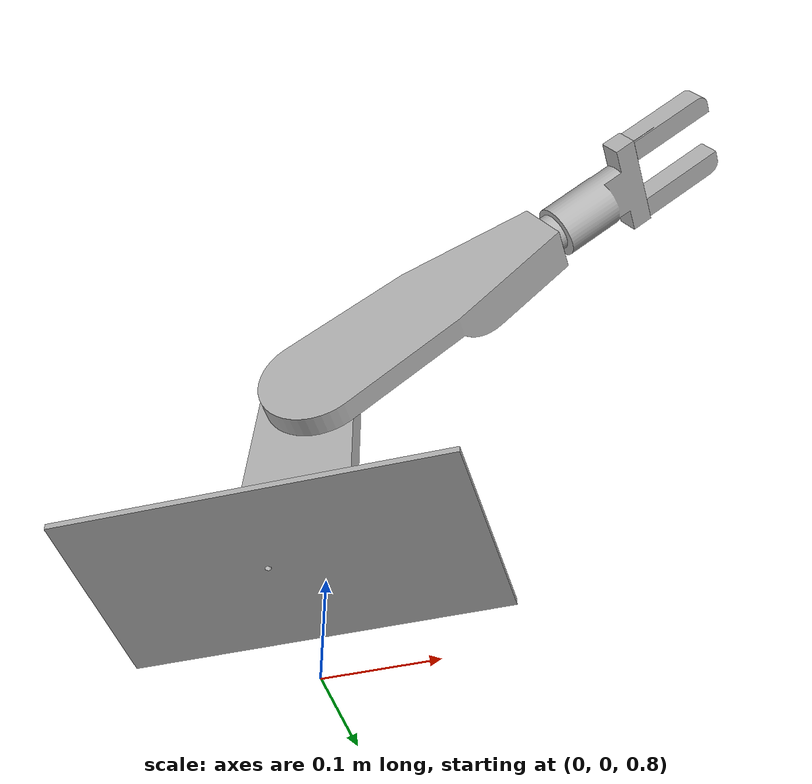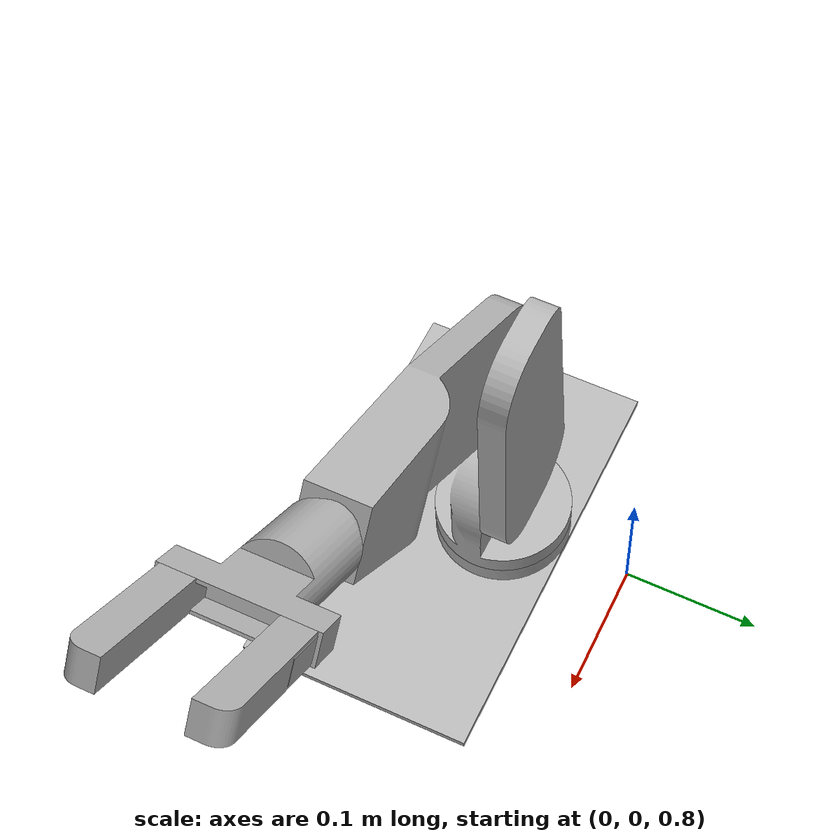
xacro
<?xml version="1.0" ?>
<robot name="rocare_arm" xmlns:xacro="http://www.ros.org/wiki/xacro">

<xacro:include filename="$(find rocare_arm_description)/urdf/materials.xacro" />
<xacro:include filename="$(find rocare_arm_description)/urdf/rocare_arm.trans" />
<xacro:include filename="$(find rocare_arm_description)/urdf/rocare_arm.gazebo" />
<link name="base_arm">
  <inertial>
    <origin rpy="0 0 0" xyz="0.012076123028712391 -0.12586947160678996 0.8067467349089783"/>
    <mass value="0.41662835740019055"/>
    <inertia ixx="0.000951" ixy="5.9e-05" ixz="1.6e-05" iyy="0.002422" iyz="-3.5e-05" izz="0.003345"/>
  </inertial>
  <visual>
    <origin rpy="0 0 0" xyz="0 0 0"/>
    <geometry>
      <mesh filename="package://rocare_arm_description/meshes/base_link.stl" scale="0.001 0.001 0.001"/>
    </geometry>
    <material name="silver"/>
  </visual>
  <collision>
    <origin rpy="0 0 0" xyz="0 0 0"/>
    <geometry>
      <mesh filename="package://rocare_arm_description/meshes/base_link.stl" scale="0.001 0.001 0.001"/>
    </geometry>
  </collision>
</link>

<link name="musc_1">
  <inertial>
    <origin rpy="0 0 0" xyz="0.0024528563193816997 0.029369279373445967 0.06944957584162426"/>
    <mass value="0.4042358344706466"/>
    <inertia ixx="0.001441" ixy="-1e-06" ixz="-3.2e-05" iyy="0.001691" iyz="-2.2e-05" izz="0.000289"/>
  </inertial>
  <visual>
    <origin rpy="0 0 0" xyz="-0.0 0.115 -0.875"/>
    <geometry>
      <mesh filename="package://rocare_arm_description/meshes/musc_1.stl" scale="0.001 0.001 0.001"/>
    </geometry>
    <material name="silver"/>
  </visual>
  <collision>
    <origin rpy="0 0 0" xyz="-0.0 0.115 -0.875"/>
    <geometry>
      <mesh filename="package://rocare_arm_description/meshes/musc_1.stl" scale="0.001 0.001 0.001"/>
    </geometry>
  </collision>
</link>

<link name="elbow_1">
  <inertial>
    <origin rpy="0 0 0" xyz="0.08009117340560826 -0.021060582174940265 0.05552393460555938"/>
    <mass value="0.5803793457847506"/>
    <inertia ixx="0.001567" ixy="-0.000142" ixz="-0.001657" iyy="0.004276" iyz="-9.7e-05" izz="0.002836"/>
  </inertial>
  <visual>
    <origin rpy="0 0 0" xyz="-0.019636 0.08 -1.027721"/>
    <geometry>
      <mesh filename="package://rocare_arm_description/meshes/elbow_1.stl" scale="0.001 0.001 0.001"/>
    </geometry>
    <material name="silver"/>
  </visual>
  <collision>
    <origin rpy="0 0 0" xyz="-0.019636 0.08 -1.027721"/>
    <geometry>
      <mesh filename="package://rocare_arm_description/meshes/elbow_1.stl" scale="0.001 0.001 0.001"/>
    </geometry>
  </collision>
</link>

<link name="finger_base_1">
  <inertial>
    <origin rpy="0 0 0" xyz="0.049311396595673795 0.000188260685575245 0.03334167139941013"/>
    <mass value="0.16857406840931222"/>
    <inertia ixx="9.8e-05" ixy="-0.0" ixz="-6.7e-05" iyy="0.000179" iyz="-0.0" izz="0.000146"/>
  </inertial>
  <visual>
    <origin rpy="0 0 0" xyz="-0.208384 0.095 -1.159155"/>
    <geometry>
      <mesh filename="package://rocare_arm_description/meshes/finger_base_1.stl" scale="0.001 0.001 0.001"/>
    </geometry>
    <material name="silver"/>
  </visual>
  <collision>
    <origin rpy="0 0 0" xyz="-0.208384 0.095 -1.159155"/>
    <geometry>
      <mesh filename="package://rocare_arm_description/meshes/finger_base_1.stl" scale="0.001 0.001 0.001"/>
    </geometry>
  </collision>
</link>

<link name="base_join_1">
  <inertial>
    <origin rpy="0 0 0" xyz="0.0001155028239109162 -0.005551813783454498 0.02664591074817846"/>
    <mass value="0.26898918626746976"/>
    <inertia ixx="0.000222" ixy="0.0" ixz="-0.0" iyy="0.000307" iyz="2.5e-05" izz="0.000276"/>
  </inertial>
  <visual>
    <origin rpy="0 0 0" xyz="-0.0 0.1 -0.821"/>
    <geometry>
      <mesh filename="package://rocare_arm_description/meshes/base_join_1.stl" scale="0.001 0.001 0.001"/>
    </geometry>
    <material name="silver"/>
  </visual>
  <collision>
    <origin rpy="0 0 0" xyz="-0.0 0.1 -0.821"/>
    <geometry>
      <mesh filename="package://rocare_arm_description/meshes/base_join_1.stl" scale="0.001 0.001 0.001"/>
    </geometry>
  </collision>
</link>

<link name="fin2_1">
  <inertial>
    <origin rpy="0 0 0" xyz="0.041466495640240186 -0.0002233898388563499 0.029226992517715544"/>
    <mass value="0.10326498679959267"/>
    <inertia ixx="3.2e-05" ixy="0.0" ixz="-3.7e-05" iyy="8.4e-05" iyz="0.0" izz="5.9e-05"/>
  </inertial>
  <visual>
    <origin rpy="0 0 0" xyz="-0.298558 0.062277 -1.222152"/>
    <geometry>
      <mesh filename="package://rocare_arm_description/meshes/fin2_1.stl" scale="0.001 0.001 0.001"/>
    </geometry>
    <material name="silver"/>
  </visual>
  <collision>
    <origin rpy="0 0 0" xyz="-0.298558 0.062277 -1.222152"/>
    <geometry>
      <mesh filename="package://rocare_arm_description/meshes/fin2_1.stl" scale="0.001 0.001 0.001"/>
    </geometry>
  </collision>
</link>

<link name="fin1_1">
  <inertial>
    <origin rpy="0 0 0" xyz="0.04142839202311416 0.0004252007549860881 0.029635179606995132"/>
    <mass value="0.10392012536514646"/>
    <inertia ixx="3.3e-05" ixy="-1e-06" ixz="-3.7e-05" iyy="8.5e-05" iyz="-0.0" izz="5.9e-05"/>
  </inertial>
  <visual>
    <origin rpy="0 0 0" xyz="-0.298558 0.12794 -1.222152"/>
    <geometry>
      <mesh filename="package://rocare_arm_description/meshes/fin1_1.stl" scale="0.001 0.001 0.001"/>
    </geometry>
    <material name="silver"/>
  </visual>
  <collision>
    <origin rpy="0 0 0" xyz="-0.298558 0.12794 -1.222152"/>
    <geometry>
      <mesh filename="package://rocare_arm_description/meshes/fin1_1.stl" scale="0.001 0.001 0.001"/>
    </geometry>
  </collision>
</link>

<joint name="musc_rev" type="revolute">
  <origin rpy="0 0 0" xyz="0.0 -0.015 0.054"/>
  <parent link="base_join_1"/>
  <child link="musc_1"/>
  <axis xyz="0.0 -1.0 0.0"/>
  <limit effort="100" lower="-1.134464" upper="0.0" velocity="100"/>
</joint>

<joint name="elb_rev" type="revolute">
  <origin rpy="0 0 0" xyz="0.019636 0.035 0.152721"/>
  <parent link="musc_1"/>
  <child link="elbow_1"/>
  <axis xyz="0.0 1.0 0.0"/>
  <limit effort="100" lower="-0.523599" upper="1.570796" velocity="100"/>
</joint>

<joint name="fin_rev" type="revolute">
  <origin rpy="0 0 0" xyz="0.188748 -0.015 0.131434"/>
  <parent link="elbow_1"/>
  <child link="finger_base_1"/>
  <axis xyz="0.819152 0.0 0.573576"/>
  <limit effort="100" lower="0.0" upper="6.283185" velocity="100"/>
</joint>

<joint name="bas_rev" type="revolute">
  <origin rpy="0 0 0" xyz="0.0 -0.1 0.821"/>
  <parent link="base_arm"/>
  <child link="base_join_1"/>
  <axis xyz="0.0 0.0 1.0"/>
  <limit effort="100" lower="-3.141593" upper="0.0" velocity="100"/>
</joint>

<joint name="fintI_slider" type="prismatic">
  <origin rpy="0 0 0" xyz="0.090174 0.032723 0.062997"/>
  <parent link="finger_base_1"/>
  <child link="fin2_1"/>
  <axis xyz="0.0 1.0 0.0"/>
  <limit effort="100" lower="-0.05" upper="0.0" velocity="100"/>
</joint>

<joint name="fino_Slider" type="prismatic">
  <origin rpy="0 0 0" xyz="0.090174 -0.03294 0.062997"/>
  <parent link="finger_base_1"/>
  <child link="fin1_1"/>
  <axis xyz="0.0 -1.0 0.0"/>
  <limit effort="100" lower="-0.05" upper="0.0" velocity="100"/>
</joint>

</robot>

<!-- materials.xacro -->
<robot name="rocare_arm" xmlns:xacro="http://www.ros.org/wiki/xacro" >

<material name="silver">
  <color rgba="0.700 0.700 0.700 1.000"/>
</material>

</robot>

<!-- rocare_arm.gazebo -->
<robot name="rocare_arm" xmlns:xacro="http://www.ros.org/wiki/xacro" >

<xacro:property name="body_color" value="Gazebo/Silver" />

<gazebo>
  <plugin filename="libgazebo_ros_control.so" name="control"/>
</gazebo>
<gazebo reference="base_link">
  <material>${body_color}</material>
  <mu1>0.2</mu1>
  <mu2>0.2</mu2>
  <selfCollide>true</selfCollide>
  <gravity>true</gravity>
</gazebo>

<gazebo reference="musc_1">
  <material>${body_color}</material>
  <mu1>0.2</mu1>
  <mu2>0.2</mu2>
  <selfCollide>true</selfCollide>
</gazebo>

<gazebo reference="elbow_1">
  <material>${body_color}</material>
  <mu1>0.2</mu1>
  <mu2>0.2</mu2>
  <selfCollide>true</selfCollide>
</gazebo>

<gazebo reference="finger_base_1">
  <material>${body_color}</material>
  <mu1>0.2</mu1>
  <mu2>0.2</mu2>
  <selfCollide>true</selfCollide>
</gazebo>

<gazebo reference="base_join_1">
  <material>${body_color}</material>
  <mu1>0.2</mu1>
  <mu2>0.2</mu2>
  <selfCollide>true</selfCollide>
</gazebo>

<gazebo reference="fin2_1">
  <material>${body_color}</material>
  <mu1>0.2</mu1>
  <mu2>0.2</mu2>
  <selfCollide>true</selfCollide>
</gazebo>

<gazebo reference="fin1_1">
  <material>${body_color}</material>
  <mu1>0.2</mu1>
  <mu2>0.2</mu2>
  <selfCollide>true</selfCollide>
</gazebo>

</robot>
